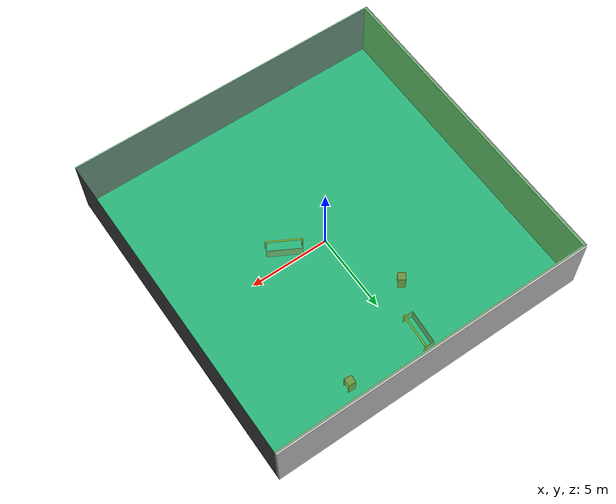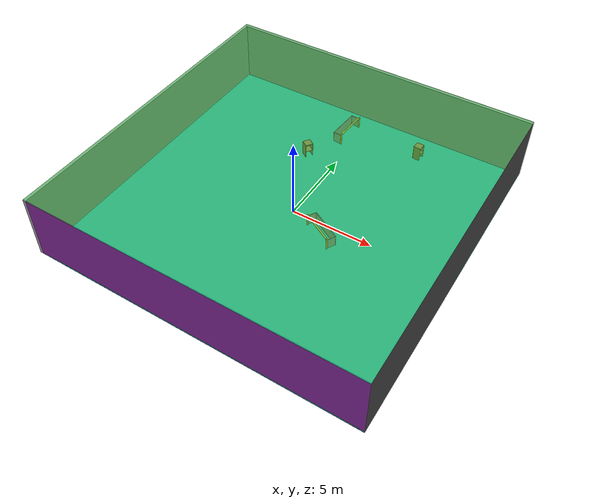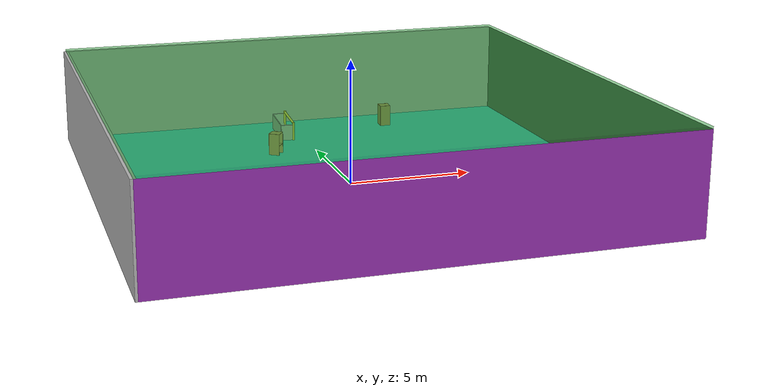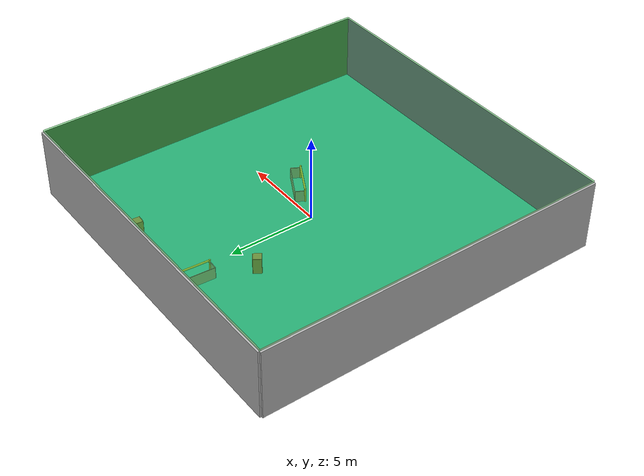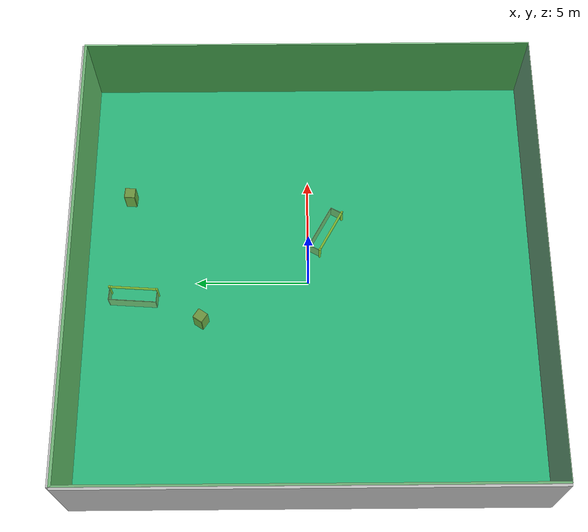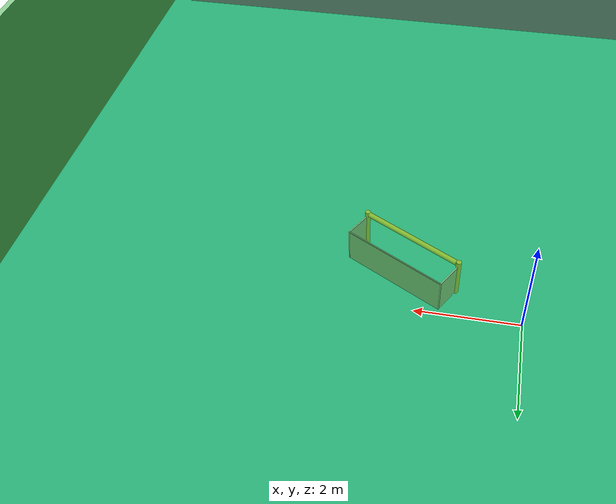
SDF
<sdf version="1.4">
 <world name="default">
  <physics type="ode">
   <max_step_size>0.001</max_step_size>
   <real_time_factor>1</real_time_factor>
   <real_time_update_rate>1000</real_time_update_rate>
   <gravity>0 0 -9.8</gravity>
  </physics>
  <scene><ambient>0.4 0.4 0.4 1</ambient><background>0.7 0.7 0.7 1</background><shadows>1</shadows></scene>
  <model name="Surrounding">
   <static>1</static>
   <link name="Ceiling">
    <collision name="Ceiling_Collision"><geometry><box><size>20 20 0.1</size></box></geometry></collision>
    <visual name="Ceiling_Visual">
     <geometry><box><size>20 20 0.1</size></box></geometry>
     <material>
      <script><uri>file://media/materials/scripts/gazebo.material</uri><name>Gazebo/GreenTransparent</name></script>
     </material>
    </visual>
    <pose>0 0 4.05 0 0 0</pose>
   </link>
   <link name="Wall_South">
    <collision name="Wall_South_Collision">
     <geometry><box><size>20 0 4</size></box></geometry>
     <pose>0 0 2 0 -0 0</pose>
    </collision>
    <visual name="Wall_South_Visual">
     <pose>0 0 2 0 -0 0</pose>
     <geometry><box><size>20 0 4</size></box></geometry>
     <material>
      <script><uri>file://media/materials/scripts/gazebo.material</uri><name>Gazebo/PurpleGlow</name></script>
     </material>
    </visual>
    <velocity_decay><linear>0</linear><angular>0</angular></velocity_decay>
    <pose>0 -10 0 0 -0 0</pose>
   </link>
   <link name="Wall_East">
    <collision name="Wall_21_Collision">
     <geometry><box><size>20 0 4</size></box></geometry>
     <pose>0 0 2 0 -0 0</pose>
    </collision>
    <visual name="Wall_21_Visual">
     <pose>0 0 2 0 -0 0</pose>
     <geometry><box><size>20 0 4</size></box></geometry>
     <material>
      <script><uri>file://media/materials/scripts/gazebo.material</uri><name>Gazebo/DarkGrey</name></script>
     </material>
    </visual>
    <velocity_decay><linear>0</linear><angular>0</angular></velocity_decay>
    <pose>10 0 0 0 -0 1.5708</pose>
   </link>
   <link name="Wall_North">
    <collision name="Wall_22_Collision">
     <geometry><box><size>20 0.2 4</size></box></geometry>
     <pose>0 0 2 0 -0 0</pose>
    </collision>
    <visual name="Wall_22_Visual">
     <pose>0 0 2 0 -0 0</pose>
     <geometry><box><size>20 0.2 4</size></box></geometry>
     <material>
      <script><uri>file://media/materials/scripts/gazebo.material</uri><name>Gazebo/CloudySky</name></script>
     </material>
    </visual>
    <velocity_decay><linear>0</linear><angular>0</angular></velocity_decay>
    <pose>0 10 0 0 -0 0</pose>
   </link>
   <link name="Wall_West">
    <collision name="Wall_23_Collision">
     <geometry><box><size>20 0.2 4</size></box></geometry>
     <pose>0 0 2 0 -0 0</pose>
    </collision>
    <visual name="Wall_23_Visual">
     <pose>0 0 2 0 -0 0</pose>
     <geometry><box><size>20 0.2 4</size></box></geometry>
     <material>
      <script><uri>file://media/materials/scripts/gazebo.material</uri><name>Gazebo/PioneerBody</name></script>
     </material>
    </visual>
    <velocity_decay><linear>0</linear><angular>0</angular></velocity_decay>
    <pose>-10 0 0 0 0 -1.5708</pose>
   </link>
   <link name="Ground_link">
    <collision name="collision">
     <pose>0 0 .05 0 -0 0</pose>
     <geometry><box><size>20 20 0.1</size></box></geometry>
    </collision>
    <visual name="visual">
     <pose>0 0 .05 0 -0 0</pose>
     <geometry><box><size>20 20 0.1</size></box></geometry>
     <material>
      <script><uri>file://media/materials/scripts/gazebo.material</uri><name>Gazebo/Turquoise</name></script>
     </material>
    </visual>
   </link>
   <static>1</static>
  </model>
  <spherical_coordinates>
   <surface_model>EARTH_WGS84</surface_model>
   <latitude_deg>0</latitude_deg>
   <longitude_deg>0</longitude_deg>
   <elevation>0</elevation>
   <heading_deg>0</heading_deg>
  </spherical_coordinates>
  <light name="lightball_0" type="diffuse">
   <diffuse>0.8 0.8 0.8 1</diffuse>
   <specular>0.2 0.2 0.2 1</specular>
   <attenuation>
    <range>100</range>
    <constant>0.7</constant>
    <linear>0.01</linear>
    <quadratic>0.001</quadratic>
   </attenuation>
   <direction>-0.5 0.1 -0.9</direction>
   <pose>-8.44563078945 0.612219988161 0.709863253921 0 0 0</pose>
  </light>
  <light name="lightball_1" type="diffuse">
   <diffuse>0.8 0.8 0.8 1</diffuse>
   <specular>0.2 0.2 0.2 1</specular>
   <attenuation>
    <range>100</range>
    <constant>0.7</constant>
    <linear>0.01</linear>
    <quadratic>0.001</quadratic>
   </attenuation>
   <direction>-0.5 0.1 -0.9</direction>
   <pose>-5.55950131623 -9.83999904235 1.35992164281 0 0 0</pose>
  </light>
  <light name="lightball_2" type="diffuse">
   <diffuse>0.8 0.8 0.8 1</diffuse>
   <specular>0.2 0.2 0.2 1</specular>
   <attenuation>
    <range>100</range>
    <constant>0.7</constant>
    <linear>0.01</linear>
    <quadratic>0.001</quadratic>
   </attenuation>
   <direction>-0.5 0.1 -0.9</direction>
   <pose>-5.68477603799 7.47056918399 2.58166843843 0 0 0</pose>
  </light>
  <light name="lightball_3" type="diffuse">
   <diffuse>0.8 0.8 0.8 1</diffuse>
   <specular>0.2 0.2 0.2 1</specular>
   <attenuation>
    <range>100</range>
    <constant>0.7</constant>
    <linear>0.01</linear>
    <quadratic>0.001</quadratic>
   </attenuation>
   <direction>-0.5 0.1 -0.9</direction>
   <pose>-0.581464307541 -0.368995498894 2.84697576733 0 0 0</pose>
  </light>
  <light name="lightball_4" type="diffuse">
   <diffuse>0.8 0.8 0.8 1</diffuse>
   <specular>0.2 0.2 0.2 1</specular>
   <attenuation>
    <range>100</range>
    <constant>0.7</constant>
    <linear>0.01</linear>
    <quadratic>0.001</quadratic>
   </attenuation>
   <direction>-0.5 0.1 -0.9</direction>
   <pose>-9.97506198843 4.34002216873 1.40359092199 0 0 0</pose>
  </light>
  <light name="lightball_5" type="diffuse">
   <diffuse>0.8 0.8 0.8 1</diffuse>
   <specular>0.2 0.2 0.2 1</specular>
   <attenuation>
    <range>100</range>
    <constant>0.7</constant>
    <linear>0.01</linear>
    <quadratic>0.001</quadratic>
   </attenuation>
   <direction>-0.5 0.1 -0.9</direction>
   <pose>5.38322085597 2.71839298896 2.15124962727 0 0 0</pose>
  </light>
  <light name="lightball_6" type="diffuse">
   <diffuse>0.8 0.8 0.8 1</diffuse>
   <specular>0.2 0.2 0.2 1</specular>
   <attenuation>
    <range>100</range>
    <constant>0.7</constant>
    <linear>0.01</linear>
    <quadratic>0.001</quadratic>
   </attenuation>
   <direction>-0.5 0.1 -0.9</direction>
   <pose>9.73652856951 -9.08596813841 2.06021149645 0 0 0</pose>
  </light>
  <light name="lightball_7" type="diffuse">
   <diffuse>0.8 0.8 0.8 1</diffuse>
   <specular>0.2 0.2 0.2 1</specular>
   <attenuation>
    <range>100</range>
    <constant>0.7</constant>
    <linear>0.01</linear>
    <quadratic>0.001</quadratic>
   </attenuation>
   <direction>-0.5 0.1 -0.9</direction>
   <pose>-9.64675388675 -4.30988079073 2.11674636668 0 0 0</pose>
  </light>
  <light name="lightball_8" type="diffuse">
   <diffuse>0.8 0.8 0.8 1</diffuse>
   <specular>0.2 0.2 0.2 1</specular>
   <attenuation>
    <range>100</range>
    <constant>0.7</constant>
    <linear>0.01</linear>
    <quadratic>0.001</quadratic>
   </attenuation>
   <direction>-0.5 0.1 -0.9</direction>
   <pose>-4.61237965336 -2.35812524991 0.805132594547 0 0 0</pose>
  </light>
  <light name="lightball_9" type="diffuse">
   <diffuse>0.8 0.8 0.8 1</diffuse>
   <specular>0.2 0.2 0.2 1</specular>
   <attenuation>
    <range>100</range>
    <constant>0.7</constant>
    <linear>0.01</linear>
    <quadratic>0.001</quadratic>
   </attenuation>
   <direction>-0.5 0.1 -0.9</direction>
   <pose>-3.98716710051 -2.02522742068 3.50678935277 0 0 0</pose>
  </light>
  <light name="lightball_10" type="diffuse">
   <diffuse>0.8 0.8 0.8 1</diffuse>
   <specular>0.2 0.2 0.2 1</specular>
   <attenuation>
    <range>100</range>
    <constant>0.7</constant>
    <linear>0.01</linear>
    <quadratic>0.001</quadratic>
   </attenuation>
   <direction>-0.5 0.1 -0.9</direction>
   <pose>6.64374314896 -2.16393500799 2.79876422945 0 0 0</pose>
  </light>
  <light name="lightball_11" type="diffuse">
   <diffuse>0.8 0.8 0.8 1</diffuse>
   <specular>0.2 0.2 0.2 1</specular>
   <attenuation>
    <range>100</range>
    <constant>0.7</constant>
    <linear>0.01</linear>
    <quadratic>0.001</quadratic>
   </attenuation>
   <direction>-0.5 0.1 -0.9</direction>
   <pose>0.530564655091 1.91911568316 2.32009054437 0 0 0</pose>
  </light>
  <light name="lightball_12" type="diffuse">
   <diffuse>0.8 0.8 0.8 1</diffuse>
   <specular>0.2 0.2 0.2 1</specular>
   <attenuation>
    <range>100</range>
    <constant>0.7</constant>
    <linear>0.01</linear>
    <quadratic>0.001</quadratic>
   </attenuation>
   <direction>-0.5 0.1 -0.9</direction>
   <pose>0.2052742843 2.60907709126 1.04334007447 0 0 0</pose>
  </light>
  <light name="lightball_13" type="diffuse">
   <diffuse>0.8 0.8 0.8 1</diffuse>
   <specular>0.2 0.2 0.2 1</specular>
   <attenuation>
    <range>100</range>
    <constant>0.7</constant>
    <linear>0.01</linear>
    <quadratic>0.001</quadratic>
   </attenuation>
   <direction>-0.5 0.1 -0.9</direction>
   <pose>2.74724190059 7.99538184251 3.30338897842 0 0 0</pose>
  </light>
  <include><uri>model://cabinet</uri><pose>-1.8868109054 4.70579426507 0 0 0 2.54960751714</pose></include>
  <include>
   <uri>model://robocup_3Dsim_goal</uri>
   <pose>-0.526112569181 7.70984940369 0 0 0 3.07366877373</pose>
  </include>
  <include>
   <uri>model://robocup_3Dsim_goal</uri>
   <pose>2.18833934406 -1.03141424546 0 0 0 1.06689546332</pose>
  </include>
  <include><uri>model://cabinet</uri><pose>4.08998345797 8.0763733107 0 0 0 3.06938040049</pose></include>
 </world>
</sdf>

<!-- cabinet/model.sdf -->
<sdf version="1.5">
  <model name="cabinet">
    <static>true</static>
    <link name="cabinet_bottom_plate">
      <inertial>
        <pose>0 0 -1 0 0 0</pose>
        <inertia>
          <ixx>2.050000</ixx>
          <ixy>0</ixy>
          <ixz>0</ixz>
          <iyy>2.050000</iyy>
          <iyz>0</iyz>
          <izz>2.050000</izz>
        </inertia>
        <mass>25.000000</mass>
      </inertial>
      <collision name="cabinet_bottom_plate_geom">
        <pose>0 0 0.010000 0 0 0</pose>
        <geometry>
          <box>
            <size>0.450000 0.450000 0.020000</size>
          </box>
        </geometry>
      </collision>
      <visual name="cabinet_bottom_plate_geom_visual">
        <pose>0 0 0.010000 0 0 0</pose>
        <geometry>
          <box>
            <size>0.450000 0.450000 0.020000</size>
          </box>
        </geometry>
        <material>
          <script>
            <uri>model://media/materials/scripts/gazebo.material</uri>
            <name>Gazebo/Wood</name>
          </script>
        </material>
      </visual>
      <collision name="cabinet_bottom_plate_geom_cabinet_back_plate">
        <pose>0.235000 0 0.510000 0 0 0</pose>
        <geometry>
          <box>
            <size>0.020000 0.450000 1.020000</size>
          </box>
        </geometry>
      </collision>
      <visual name="cabinet_bottom_plate_geom_cabinet_back_plate_visual">
        <pose>0.235000 0 0.510000 0 0 0</pose>
        <geometry>
          <box>
            <size>0.020000 0.450000 1.020000</size>
          </box>
        </geometry>
        <material>
          <script>
            <uri>model://media/materials/scripts/gazebo.material</uri>
            <name>Gazebo/Wood</name>
          </script>
        </material>
      </visual>
      <collision name="cabinet_bottom_plate_geom_cabinet_left_plate">
        <pose>0 0.235000 0.510000 0 0 0</pose>
        <geometry>
          <box>
            <size>0.450000 0.020000 1.020000</size>
          </box>
        </geometry>
      </collision>
      <visual name="cabinet_bottom_plate_geom_cabinet_left_plate_visual">
        <pose>0 0.235000 0.510000 0 0 0</pose>
        <geometry>
          <box>
            <size>0.450000 0.020000 1.020000</size>
          </box>
        </geometry>
        <material>
          <script>
            <uri>model://media/materials/scripts/gazebo.material</uri>
            <name>Gazebo/Wood</name>
          </script>
        </material>
      </visual>
      <collision name="cabinet_bottom_plate_geom_cabinet_middle_plate">
        <pose>0 0 0.510000 0 0 0</pose>
        <geometry>
          <box>
            <size>0.450000 0.450000 0.020000</size>
          </box>
        </geometry>
      </collision>
      <visual name="cabinet_bottom_plate_geom_cabinet_middle_plate_visual">
        <pose>0 0 0.510000 0 0 0</pose>
        <geometry>
          <box>
            <size>0.450000 0.450000 0.020000</size>
          </box>
        </geometry>
        <material>
          <script>
            <uri>model://media/materials/scripts/gazebo.material</uri>
            <name>Gazebo/Wood</name>
          </script>
        </material>
      </visual>
      <collision name="cabinet_bottom_plate_geom_cabinet_right_plate">
        <pose>0 -0.235000 0.510000 0 0 0</pose>
        <geometry>
          <box>
            <size>0.450000 0.020000 1.020000</size>
          </box>
        </geometry>
      </collision>
      <visual name="cabinet_bottom_plate_geom_cabinet_right_plate_visual">
        <pose>0 -0.235000 0.510000 0 0 0</pose>
        <geometry>
          <box>
            <size>0.450000 0.020000 1.020000</size>
          </box>
        </geometry>
        <material>
          <script>
            <uri>model://media/materials/scripts/gazebo.material</uri>
            <name>Gazebo/Wood</name>
          </script>
        </material>
      </visual>
      <collision name="cabinet_bottom_plate_geom_cabinet_top_plate">
        <pose>0 0 1.010000 0 0 0</pose>
        <geometry>
          <box>
            <size>0.450000 0.450000 0.020000</size>
          </box>
        </geometry>
      </collision>
      <visual name="cabinet_bottom_plate_geom_cabinet_top_plate_visual">
        <pose>0 0 1.010000 0 0 0</pose>
        <geometry>
          <box>
            <size>0.450000 0.450000 0.020000</size>
          </box>
        </geometry>
        <material>
          <script>
            <uri>model://media/materials/scripts/gazebo.material</uri>
            <name>Gazebo/Wood</name>
          </script>
        </material>
      </visual>
    </link>
  </model>
</sdf>

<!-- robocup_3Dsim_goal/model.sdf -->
<sdf version="1.5">
  <model name="robocup_3d_goal">
    <static>true</static>
    <link name="left_post">
      <pose>0 1.05 0.45 0 0 0</pose>
      <collision name="collision">
        <geometry>
          <cylinder>
            <radius>0.05</radius>
            <length>0.9</length>
          </cylinder>
        </geometry>
      </collision>
      <visual name="visual">
        <geometry>
          <cylinder>
            <radius>0.05</radius>
            <length>0.9</length>
          </cylinder>
        </geometry>
        <material>
          <script>
            <uri>file://media/materials/scripts/gazebo.material</uri>
            <name>Gazebo/ZincYellow</name>
          </script>
        </material>
      </visual>
    </link>
    <link name="left_support_horiz_lower">
      <pose>0.30 1.05 0.01 0 0 0</pose>
      <collision name="collision">
        <geometry>
          <box>
            <size>0.50 0.02 0.02</size>
          </box>
        </geometry>
      </collision>
      <visual name="visual">
        <geometry>
          <box>
            <size>0.50 0.02 0.02</size>
          </box>
        </geometry>
        <material>
          <script>
            <uri>file://media/materials/scripts/gazebo.material</uri>
            <name>Gazebo/White</name>
          </script>
        </material>
      </visual>
    </link>
    <link name="left_support_horiz_upper">
      <pose>0.30 1.05 0.79 0 0 0</pose>
      <collision name="collision">
        <geometry>
          <box>
            <size>0.50 0.02 0.02</size>
          </box>
        </geometry>
      </collision>
      <visual name="visual">
        <geometry>
          <box>
            <size>0.50 0.02 0.02</size>
          </box>
        </geometry>
        <material>
          <script>
            <uri>file://media/materials/scripts/gazebo.material</uri>
            <name>Gazebo/White</name>
          </script>
        </material>
      </visual>
    </link>
    <link name="left_support_vertical">
      <pose>0.56 1.05 0.4 0 1.5708 0</pose>
      <collision name="collision">
        <geometry>
          <box>
            <size>0.80 0.02 0.02</size>
          </box>
        </geometry>
      </collision>
      <visual name="visual">
        <geometry>
          <box>
            <size>0.80 0.02 0.02</size>
          </box>
        </geometry>
        <material>
          <script>
            <uri>file://media/materials/scripts/gazebo.material</uri>
            <name>Gazebo/White</name>
          </script>
        </material>
      </visual>
    </link>
    <link name="right_support_horiz_lower">
      <pose>0.30 -1.05 0.01 0 0 0</pose>
      <collision name="collision">
        <geometry>
          <box>
            <size>0.50 0.02 0.02</size>
          </box>
        </geometry>
      </collision>
      <visual name="visual">
        <geometry>
          <box>
            <size>0.50 0.02 0.02</size>
          </box>
        </geometry>
        <material>
          <script>
            <uri>file://media/materials/scripts/gazebo.material</uri>
            <name>Gazebo/White</name>
          </script>
        </material>
      </visual>
    </link>
    <link name="right_support_horiz_upper">
      <pose>0.30 -1.05 0.79 0 0 0</pose>
      <collision name="collision">
        <geometry>
          <box>
            <size>0.50 0.02 0.02</size>
          </box>
        </geometry>
      </collision>
      <visual name="visual">
        <geometry>
          <box>
            <size>0.50 0.02 0.02</size>
          </box>
        </geometry>
        <material>
          <script>
            <uri>file://media/materials/scripts/gazebo.material</uri>
            <name>Gazebo/White</name>
          </script>
        </material>
      </visual>
    </link>
    <link name="right_support_vertical">
      <pose>0.56 -1.05 0.4 0 1.5708 0</pose>
      <collision name="collision">
        <geometry>
          <box>
            <size>0.80 0.02 0.02</size>
          </box>
        </geometry>
      </collision>
      <visual name="visual">
        <geometry>
          <box>
            <size>0.80 0.02 0.02</size>
          </box>
        </geometry>
        <material>
          <script>
            <uri>file://media/materials/scripts/gazebo.material</uri>
            <name>Gazebo/White</name>
          </script>
        </material>
      </visual>
    </link>
    <link name="center_support_horiz_lower">
      <pose>0.56 0 0.01 0 1.5708 0</pose>
      <collision name="collision">
        <geometry>
          <box>
            <size>0.02 2.08 0.02</size>
          </box>
        </geometry>
      </collision>
      <visual name="visual">
        <geometry>
          <box>
            <size>0.02 2.08 0.02</size>
          </box>
        </geometry>
        <material>
          <script>
            <uri>file://media/materials/scripts/gazebo.material</uri>
            <name>Gazebo/White</name>
          </script>
        </material>
      </visual>
    </link>
    <link name="center_support_horiz_upper">
      <pose>0.56 0 0.79 0 1.5708 0</pose>
      <collision name="collision">
        <geometry>
          <box>
            <size>0.02 2.08 0.02</size>
          </box>
        </geometry>
      </collision>
      <visual name="visual">
        <geometry>
          <box>
            <size>0.02 2.08 0.02</size>
          </box>
        </geometry>
        <material>
          <script>
            <uri>file://media/materials/scripts/gazebo.material</uri>
            <name>Gazebo/White</name>
          </script>
        </material>
      </visual>
    </link>
    <link name="right_post">
      <pose>0 -1.05 0.45 0 0 0</pose>
      <collision name="collision">
        <geometry>
          <cylinder>
            <radius>0.05</radius>
            <length>0.9</length>
          </cylinder>
        </geometry>
      </collision>
      <visual name="visual">
        <geometry>
          <cylinder>
            <radius>0.05</radius>
            <length>0.9</length>
          </cylinder>
        </geometry>
        <material>
          <script>
            <uri>file://media/materials/scripts/gazebo.material</uri>
            <name>Gazebo/ZincYellow</name>
          </script>
        </material>
      </visual>
    </link>
    <link name="crossbar">
      <pose>0 0 0.85 1.57 1.57 0</pose>
      <collision name="collision">
        <geometry>
          <cylinder>
            <radius>0.05</radius>
            <length>2.0</length>
          </cylinder>
        </geometry>
      </collision>
      <visual name="visual">
        <geometry>
          <cylinder>
            <radius>0.05</radius>
            <length>2.0</length>
          </cylinder>
        </geometry>
        <material>
          <script>
            <uri>file://media/materials/scripts/gazebo.material</uri>
            <name>Gazebo/ZincYellow</name>
          </script>
        </material>
      </visual>
    </link>
    <link name="center_net">
      <pose>0.56 0 0.40 0 0 0</pose>
      <collision name="collision">
        <geometry>
          <box>
            <size>0.01 2.1 0.80</size>
          </box>
        </geometry>
      </collision>
      <visual name="visual">
        <geometry>
          <box>
            <size>0.01 2.1 0.80</size>
          </box>
        </geometry>
        <material>
          <script>
            <uri>model://../model_source/models/robocup09_spl_field/materials/scripts/</uri>
            <uri>model://../model_source/models/robocup09_spl_field/materials/textures/</uri>
            <name>RoboCup/Net</name>
          </script>
        </material>
      </visual>
    </link>
    <link name="left_net">
      <pose>0.30 1.05 0.40 0 0 0</pose>
      <collision name="collision">
        <geometry>
          <box>
            <size>0.50 0.01 0.76</size>
          </box>
        </geometry>
      </collision>
      <visual name="visual">
        <geometry>
          <box>
            <size>0.50 0.01 0.76</size>
          </box>
        </geometry>
        <material>
          <script>
            <uri>model://../model_source/models/robocup09_spl_field/materials/scripts/</uri>
            <uri>model://../model_source/models/robocup09_spl_field/materials/textures/</uri>
            <name>RoboCup/Net</name>
          </script>
        </material>
      </visual>
    </link>
    <link name="right_net">
      <pose>0.30 -1.05 0.40 0 0 0</pose>
      <collision name="collision">
        <geometry>
          <box>
            <size>0.50 0.01 0.76</size>
          </box>
        </geometry>
      </collision>
      <visual name="visual">
        <geometry>
          <box>
            <size>0.50 0.01 0.76</size>
          </box>
        </geometry>
        <material>
          <script>
            <uri>model://../model_source/models/robocup09_spl_field/materials/scripts/</uri>
            <uri>model://../model_source/models/robocup09_spl_field/materials/textures/</uri>
            <name>RoboCup/Net</name>
          </script>
        </material>
      </visual>
    </link>
  </model>
</sdf>
